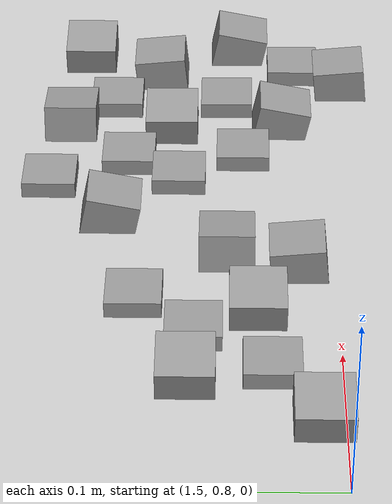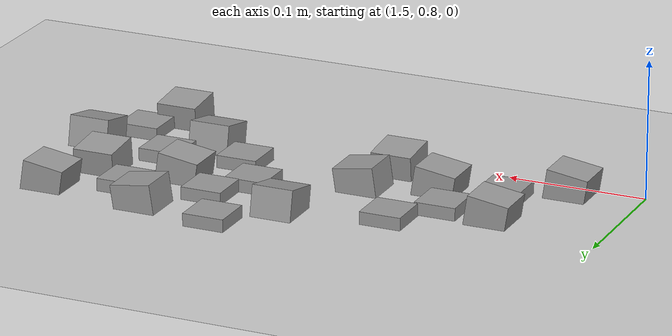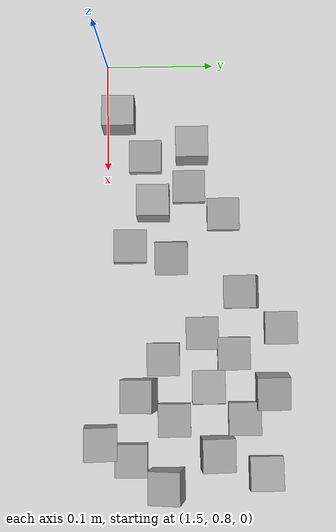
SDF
<sdf version="1.7">
 <world name="default">
  <model name="ground_plane">
   <static>1</static>
   <link name="link">
    <collision name="collision">
     <geometry><plane><normal>0 0 1</normal><size>100 100</size></plane></geometry>
     <surface><friction><ode><mu>100</mu><mu2>50</mu2></ode></friction></surface>
    </collision>
    <visual name="visual">
     <cast_shadows>0</cast_shadows>
     <geometry><plane><normal>0 0 1</normal><size>100 100</size></plane></geometry>
     <material>
      <script><uri>file://media/materials/scripts/gazebo.material</uri><name>Gazebo/Grey</name></script>
     </material>
    </visual>
   </link>
  </model>
  <model name="stone_road_0">
   <link name="link_0_clone_2_clone_2_clone_10">
    <inertial>
     <mass>1</mass>
     <inertia>
      <ixx>0.166667</ixx>
      <ixy>0</ixy>
      <ixz>0</ixz>
      <iyy>0.166667</iyy>
      <iyz>0</iyz>
      <izz>0.166667</izz>
     </inertia>
    </inertial>
    <pose>0.09869 0.163436 0.003778 0 -0.15 0</pose>
    <kinematic>1</kinematic>
    <visual name="visual">
     <geometry><box><size>0.03 0.03 0.03</size></box></geometry>
     <material>
      <lighting>1</lighting>
      <script><uri>file://media/materials/scripts/gazebo.material</uri><name>Gazebo/Grey</name></script>
      <shader type="pixel"><normal_map>__default__</normal_map></shader>
      <ambient>0.3 0.3 0.3 1</ambient>
      <diffuse>0.7 0.7 0.7 1</diffuse>
      <specular>0.01 0.01 0.01 1</specular>
      <emissive>0 0 0 1</emissive>
     </material>
    </visual>
    <collision name="collision">
     <geometry><box><size>0.03 0.03 0.03</size></box></geometry>
     <surface>
      <friction>
       <ode><mu>1</mu><mu2>1</mu2><fdir1>0 0 0</fdir1><slip1>0</slip1><slip2>0</slip2></ode>
       <torsional>
        <coefficient>1</coefficient>
        <patch_radius>0</patch_radius>
        <surface_radius>0</surface_radius>
        <use_patch_radius>1</use_patch_radius>
        <ode><slip>0</slip></ode>
       </torsional>
      </friction>
      <bounce><restitution_coefficient>0</restitution_coefficient><threshold>1e+06</threshold></bounce>
      <contact>
       <collide_without_contact>0</collide_without_contact>
       <collide_without_contact_bitmask>1</collide_without_contact_bitmask>
       <collide_bitmask>1</collide_bitmask>
       <ode>
        <soft_cfm>0</soft_cfm>
        <soft_erp>0.2</soft_erp>
        <kp>1e+13</kp>
        <kd>1</kd>
        <max_vel>0.01</max_vel>
        <min_depth>0</min_depth>
       </ode>
       <bullet>
        <split_impulse>1</split_impulse>
        <split_impulse_penetration_threshold>-0.01</split_impulse_penetration_threshold>
        <soft_cfm>0</soft_cfm>
        <soft_erp>0.2</soft_erp>
        <kp>1e+13</kp>
        <kd>1</kd>
       </bullet>
      </contact>
     </surface>
    </collision>
   </link>
   <link name="link_0_clone_2_clone_2_clone_12">
    <inertial>
     <mass>1</mass>
     <inertia>
      <ixx>0.166667</ixx>
      <ixy>0</ixy>
      <ixz>0</ixz>
      <iyy>0.166667</iyy>
      <iyz>0</iyz>
      <izz>0.166667</izz>
     </inertia>
    </inertial>
    <pose>0.044693 0.200081 0.003778 0 -0.15 0</pose>
    <kinematic>1</kinematic>
    <visual name="visual">
     <geometry><box><size>0.03 0.03 0.03</size></box></geometry>
     <material>
      <lighting>1</lighting>
      <script><uri>file://media/materials/scripts/gazebo.material</uri><name>Gazebo/Grey</name></script>
      <shader type="pixel"><normal_map>__default__</normal_map></shader>
      <ambient>0.3 0.3 0.3 1</ambient>
      <diffuse>0.7 0.7 0.7 1</diffuse>
      <specular>0.01 0.01 0.01 1</specular>
      <emissive>0 0 0 1</emissive>
     </material>
    </visual>
    <collision name="collision">
     <geometry><box><size>0.03 0.03 0.03</size></box></geometry>
     <surface>
      <friction>
       <ode><mu>1</mu><mu2>1</mu2><fdir1>0 0 0</fdir1><slip1>0</slip1><slip2>0</slip2></ode>
       <torsional>
        <coefficient>1</coefficient>
        <patch_radius>0</patch_radius>
        <surface_radius>0</surface_radius>
        <use_patch_radius>1</use_patch_radius>
        <ode><slip>0</slip></ode>
       </torsional>
      </friction>
      <bounce><restitution_coefficient>0</restitution_coefficient><threshold>1e+06</threshold></bounce>
      <contact>
       <collide_without_contact>0</collide_without_contact>
       <collide_without_contact_bitmask>1</collide_without_contact_bitmask>
       <collide_bitmask>1</collide_bitmask>
       <ode>
        <soft_cfm>0</soft_cfm>
        <soft_erp>0.2</soft_erp>
        <kp>1e+13</kp>
        <kd>1</kd>
        <max_vel>0.01</max_vel>
        <min_depth>0</min_depth>
       </ode>
       <bullet>
        <split_impulse>1</split_impulse>
        <split_impulse_penetration_threshold>-0.01</split_impulse_penetration_threshold>
        <soft_cfm>0</soft_cfm>
        <soft_erp>0.2</soft_erp>
        <kp>1e+13</kp>
        <kd>1</kd>
       </bullet>
      </contact>
     </surface>
    </collision>
   </link>
   <link name="link_0_clone_2_clone_2_clone_13">
    <inertial>
     <mass>1</mass>
     <inertia>
      <ixx>0.166667</ixx>
      <ixy>0</ixy>
      <ixz>0</ixz>
      <iyy>0.166667</iyy>
      <iyz>0</iyz>
      <izz>0.166667</izz>
     </inertia>
    </inertial>
    <pose>0.014407 0.13189 0.003778 0 -0.15 0</pose>
    <kinematic>1</kinematic>
    <visual name="visual">
     <geometry><box><size>0.03 0.03 0.03</size></box></geometry>
     <material>
      <lighting>1</lighting>
      <script><uri>file://media/materials/scripts/gazebo.material</uri><name>Gazebo/Grey</name></script>
      <shader type="pixel"><normal_map>__default__</normal_map></shader>
      <ambient>0.3 0.3 0.3 1</ambient>
      <diffuse>0.7 0.7 0.7 1</diffuse>
      <specular>0.01 0.01 0.01 1</specular>
      <emissive>0 0 0 1</emissive>
     </material>
    </visual>
    <collision name="collision">
     <geometry><box><size>0.03 0.03 0.03</size></box></geometry>
     <surface>
      <friction>
       <ode><mu>1</mu><mu2>1</mu2><fdir1>0 0 0</fdir1><slip1>0</slip1><slip2>0</slip2></ode>
       <torsional>
        <coefficient>1</coefficient>
        <patch_radius>0</patch_radius>
        <surface_radius>0</surface_radius>
        <use_patch_radius>1</use_patch_radius>
        <ode><slip>0</slip></ode>
       </torsional>
      </friction>
      <bounce><restitution_coefficient>0</restitution_coefficient><threshold>1e+06</threshold></bounce>
      <contact>
       <collide_without_contact>0</collide_without_contact>
       <collide_without_contact_bitmask>1</collide_without_contact_bitmask>
       <collide_bitmask>1</collide_bitmask>
       <ode>
        <soft_cfm>0</soft_cfm>
        <soft_erp>0.2</soft_erp>
        <kp>1e+13</kp>
        <kd>1</kd>
        <max_vel>0.01</max_vel>
        <min_depth>0</min_depth>
       </ode>
       <bullet>
        <split_impulse>1</split_impulse>
        <split_impulse_penetration_threshold>-0.01</split_impulse_penetration_threshold>
        <soft_cfm>0</soft_cfm>
        <soft_erp>0.2</soft_erp>
        <kp>1e+13</kp>
        <kd>1</kd>
       </bullet>
      </contact>
     </surface>
    </collision>
   </link>
   <link name="link_0_clone_2_clone_2_clone_13_clone">
    <inertial>
     <mass>1</mass>
     <inertia>
      <ixx>0.166667</ixx>
      <ixy>0</ixy>
      <ixz>0</ixz>
      <iyy>0.166667</iyy>
      <iyz>0</iyz>
      <izz>0.166667</izz>
     </inertia>
    </inertial>
    <pose>0.138846 0.140956 0.003778 -0.1 0 0</pose>
    <kinematic>1</kinematic>
    <visual name="visual">
     <geometry><box><size>0.03 0.03 0.03</size></box></geometry>
     <material>
      <lighting>1</lighting>
      <script><uri>file://media/materials/scripts/gazebo.material</uri><name>Gazebo/Grey</name></script>
      <shader type="pixel"><normal_map>__default__</normal_map></shader>
      <ambient>0.3 0.3 0.3 1</ambient>
      <diffuse>0.7 0.7 0.7 1</diffuse>
      <specular>0.01 0.01 0.01 1</specular>
      <emissive>0 0 0 1</emissive>
     </material>
    </visual>
    <collision name="collision">
     <geometry><box><size>0.03 0.03 0.03</size></box></geometry>
     <surface>
      <friction>
       <ode><mu>1</mu><mu2>1</mu2><fdir1>0 0 0</fdir1><slip1>0</slip1><slip2>0</slip2></ode>
       <torsional>
        <coefficient>1</coefficient>
        <patch_radius>0</patch_radius>
        <surface_radius>0</surface_radius>
        <use_patch_radius>1</use_patch_radius>
        <ode><slip>0</slip></ode>
       </torsional>
      </friction>
      <bounce><restitution_coefficient>0</restitution_coefficient><threshold>1e+06</threshold></bounce>
      <contact>
       <collide_without_contact>0</collide_without_contact>
       <collide_without_contact_bitmask>1</collide_without_contact_bitmask>
       <collide_bitmask>1</collide_bitmask>
       <ode>
        <soft_cfm>0</soft_cfm>
        <soft_erp>0.2</soft_erp>
        <kp>1e+13</kp>
        <kd>1</kd>
        <max_vel>0.01</max_vel>
        <min_depth>0</min_depth>
       </ode>
       <bullet>
        <split_impulse>1</split_impulse>
        <split_impulse_penetration_threshold>-0.01</split_impulse_penetration_threshold>
        <soft_cfm>0</soft_cfm>
        <soft_erp>0.2</soft_erp>
        <kp>1e+13</kp>
        <kd>1</kd>
       </bullet>
      </contact>
     </surface>
    </collision>
   </link>
   <link name="link_0_clone_2_clone_2_clone_13_clone_clone_16">
    <inertial>
     <mass>1</mass>
     <inertia>
      <ixx>0.166667</ixx>
      <ixy>0</ixy>
      <ixz>0</ixz>
      <iyy>0.166667</iyy>
      <iyz>0</iyz>
      <izz>0.166667</izz>
     </inertia>
    </inertial>
    <pose>0.108948 0.22849 -0.006222 0 -0 0</pose>
    <kinematic>1</kinematic>
    <visual name="visual">
     <geometry><box><size>0.03 0.03 0.03</size></box></geometry>
     <material>
      <lighting>1</lighting>
      <script><uri>file://media/materials/scripts/gazebo.material</uri><name>Gazebo/Grey</name></script>
      <shader type="pixel"><normal_map>__default__</normal_map></shader>
      <ambient>0.3 0.3 0.3 1</ambient>
      <diffuse>0.7 0.7 0.7 1</diffuse>
      <specular>0.01 0.01 0.01 1</specular>
      <emissive>0 0 0 1</emissive>
     </material>
    </visual>
    <collision name="collision">
     <geometry><box><size>0.03 0.03 0.03</size></box></geometry>
     <surface>
      <friction>
       <ode><mu>1</mu><mu2>1</mu2><fdir1>0 0 0</fdir1><slip1>0</slip1><slip2>0</slip2></ode>
       <torsional>
        <coefficient>1</coefficient>
        <patch_radius>0</patch_radius>
        <surface_radius>0</surface_radius>
        <use_patch_radius>1</use_patch_radius>
        <ode><slip>0</slip></ode>
       </torsional>
      </friction>
      <bounce><restitution_coefficient>0</restitution_coefficient><threshold>1e+06</threshold></bounce>
      <contact>
       <collide_without_contact>0</collide_without_contact>
       <collide_without_contact_bitmask>1</collide_without_contact_bitmask>
       <collide_bitmask>1</collide_bitmask>
       <ode>
        <soft_cfm>0</soft_cfm>
        <soft_erp>0.2</soft_erp>
        <kp>1e+13</kp>
        <kd>1</kd>
        <max_vel>0.01</max_vel>
        <min_depth>0</min_depth>
       </ode>
       <bullet>
        <split_impulse>1</split_impulse>
        <split_impulse_penetration_threshold>-0.01</split_impulse_penetration_threshold>
        <soft_cfm>0</soft_cfm>
        <soft_erp>0.2</soft_erp>
        <kp>1e+13</kp>
        <kd>1</kd>
       </bullet>
      </contact>
     </surface>
    </collision>
   </link>
   <link name="link_0_clone_2_clone_2_clone_13_clone_clone_16_clone">
    <inertial>
     <mass>1</mass>
     <inertia>
      <ixx>0.166667</ixx>
      <ixy>0</ixy>
      <ixz>0</ixz>
      <iyy>0.166667</iyy>
      <iyz>0</iyz>
      <izz>0.166667</izz>
     </inertia>
    </inertial>
    <pose>0.0535 0.156403 -0.006222 0 -0 0</pose>
    <kinematic>1</kinematic>
    <visual name="visual">
     <geometry><box><size>0.03 0.03 0.03</size></box></geometry>
     <material>
      <lighting>1</lighting>
      <script><uri>file://media/materials/scripts/gazebo.material</uri><name>Gazebo/Grey</name></script>
      <shader type="pixel"><normal_map>__default__</normal_map></shader>
      <ambient>0.3 0.3 0.3 1</ambient>
      <diffuse>0.7 0.7 0.7 1</diffuse>
      <specular>0.01 0.01 0.01 1</specular>
      <emissive>0 0 0 1</emissive>
     </material>
    </visual>
    <collision name="collision">
     <geometry><box><size>0.03 0.03 0.03</size></box></geometry>
     <surface>
      <friction>
       <ode><mu>1</mu><mu2>1</mu2><fdir1>0 0 0</fdir1><slip1>0</slip1><slip2>0</slip2></ode>
       <torsional>
        <coefficient>1</coefficient>
        <patch_radius>0</patch_radius>
        <surface_radius>0</surface_radius>
        <use_patch_radius>1</use_patch_radius>
        <ode><slip>0</slip></ode>
       </torsional>
      </friction>
      <bounce><restitution_coefficient>0</restitution_coefficient><threshold>1e+06</threshold></bounce>
      <contact>
       <collide_without_contact>0</collide_without_contact>
       <collide_without_contact_bitmask>1</collide_without_contact_bitmask>
       <collide_bitmask>1</collide_bitmask>
       <ode>
        <soft_cfm>0</soft_cfm>
        <soft_erp>0.2</soft_erp>
        <kp>1e+13</kp>
        <kd>1</kd>
        <max_vel>0.01</max_vel>
        <min_depth>0</min_depth>
       </ode>
       <bullet>
        <split_impulse>1</split_impulse>
        <split_impulse_penetration_threshold>-0.01</split_impulse_penetration_threshold>
        <soft_cfm>0</soft_cfm>
        <soft_erp>0.2</soft_erp>
        <kp>1e+13</kp>
        <kd>1</kd>
       </bullet>
      </contact>
     </surface>
    </collision>
   </link>
   <link name="link_0_clone_2_clone_2_clone_13_clone_clone_16_clone_24">
    <inertial>
     <mass>1</mass>
     <inertia>
      <ixx>0.166667</ixx>
      <ixy>0</ixy>
      <ixz>0</ixz>
      <iyy>0.166667</iyy>
      <iyz>0</iyz>
      <izz>0.166667</izz>
     </inertia>
    </inertial>
    <pose>0.08246 0.196776 -0.006222 0 -0 0</pose>
    <kinematic>1</kinematic>
    <visual name="visual">
     <geometry><box><size>0.03 0.03 0.03</size></box></geometry>
     <material>
      <lighting>1</lighting>
      <script><uri>file://media/materials/scripts/gazebo.material</uri><name>Gazebo/Grey</name></script>
      <shader type="pixel"><normal_map>__default__</normal_map></shader>
      <ambient>0.3 0.3 0.3 1</ambient>
      <diffuse>0.7 0.7 0.7 1</diffuse>
      <specular>0.01 0.01 0.01 1</specular>
      <emissive>0 0 0 1</emissive>
     </material>
    </visual>
    <collision name="collision">
     <geometry><box><size>0.03 0.03 0.03</size></box></geometry>
     <surface>
      <friction>
       <ode><mu>1</mu><mu2>1</mu2><fdir1>0 0 0</fdir1><slip1>0</slip1><slip2>0</slip2></ode>
       <torsional>
        <coefficient>1</coefficient>
        <patch_radius>0</patch_radius>
        <surface_radius>0</surface_radius>
        <use_patch_radius>1</use_patch_radius>
        <ode><slip>0</slip></ode>
       </torsional>
      </friction>
      <bounce><restitution_coefficient>0</restitution_coefficient><threshold>1e+06</threshold></bounce>
      <contact>
       <collide_without_contact>0</collide_without_contact>
       <collide_without_contact_bitmask>1</collide_without_contact_bitmask>
       <collide_bitmask>1</collide_bitmask>
       <ode>
        <soft_cfm>0</soft_cfm>
        <soft_erp>0.2</soft_erp>
        <kp>1e+13</kp>
        <kd>1</kd>
        <max_vel>0.01</max_vel>
        <min_depth>0</min_depth>
       </ode>
       <bullet>
        <split_impulse>1</split_impulse>
        <split_impulse_penetration_threshold>-0.01</split_impulse_penetration_threshold>
        <soft_cfm>0</soft_cfm>
        <soft_erp>0.2</soft_erp>
        <kp>1e+13</kp>
        <kd>1</kd>
       </bullet>
      </contact>
     </surface>
    </collision>
   </link>
   <link name="link_0_clone_2_clone_9">
    <inertial>
     <mass>1</mass>
     <inertia>
      <ixx>0.166667</ixx>
      <ixy>0</ixy>
      <ixz>0</ixz>
      <iyy>0.166667</iyy>
      <iyz>0</iyz>
      <izz>0.166667</izz>
     </inertia>
    </inertial>
    <pose>0.148876 0.179752 0.003778 0 0.15 0</pose>
    <kinematic>1</kinematic>
    <visual name="visual">
     <geometry><box><size>0.03 0.03 0.03</size></box></geometry>
     <material>
      <lighting>1</lighting>
      <script><uri>file://media/materials/scripts/gazebo.material</uri><name>Gazebo/Grey</name></script>
      <shader type="pixel"><normal_map>__default__</normal_map></shader>
      <ambient>0.3 0.3 0.3 1</ambient>
      <diffuse>0.7 0.7 0.7 1</diffuse>
      <specular>0.01 0.01 0.01 1</specular>
      <emissive>0 0 0 1</emissive>
     </material>
    </visual>
    <collision name="collision">
     <geometry><box><size>0.03 0.03 0.03</size></box></geometry>
     <surface>
      <friction>
       <ode><mu>1</mu><mu2>1</mu2><fdir1>0 0 0</fdir1><slip1>0</slip1><slip2>0</slip2></ode>
       <torsional>
        <coefficient>1</coefficient>
        <patch_radius>0</patch_radius>
        <surface_radius>0</surface_radius>
        <use_patch_radius>1</use_patch_radius>
        <ode><slip>0</slip></ode>
       </torsional>
      </friction>
      <bounce><restitution_coefficient>0</restitution_coefficient><threshold>1e+06</threshold></bounce>
      <contact>
       <collide_without_contact>0</collide_without_contact>
       <collide_without_contact_bitmask>1</collide_without_contact_bitmask>
       <collide_bitmask>1</collide_bitmask>
       <ode>
        <soft_cfm>0</soft_cfm>
        <soft_erp>0.2</soft_erp>
        <kp>1e+13</kp>
        <kd>1</kd>
        <max_vel>0.01</max_vel>
        <min_depth>0</min_depth>
       </ode>
       <bullet>
        <split_impulse>1</split_impulse>
        <split_impulse_penetration_threshold>-0.01</split_impulse_penetration_threshold>
        <soft_cfm>0</soft_cfm>
        <soft_erp>0.2</soft_erp>
        <kp>1e+13</kp>
        <kd>1</kd>
       </bullet>
      </contact>
     </surface>
    </collision>
   </link>
   <static>0</static>
   <pose>1.53544 0.679184 -0 0 -0 0</pose>
  </model>
  <model name="stone_road_5">
   <link name="link_0_clone_0">
    <inertial>
     <mass>1</mass>
     <inertia>
      <ixx>0.166667</ixx>
      <ixy>0</ixy>
      <ixz>0</ixz>
      <iyy>0.166667</iyy>
      <iyz>0</iyz>
      <izz>0.166667</izz>
     </inertia>
    </inertial>
    <pose>-0.104982 -0.15412 0.003778 0.2 -0 0</pose>
    <kinematic>1</kinematic>
    <visual name="visual">
     <geometry><box><size>0.03 0.03 0.03</size></box></geometry>
     <material>
      <lighting>1</lighting>
      <script><uri>file://media/materials/scripts/gazebo.material</uri><name>Gazebo/Grey</name></script>
      <shader type="pixel"><normal_map>__default__</normal_map></shader>
      <ambient>0.3 0.3 0.3 1</ambient>
      <diffuse>0.7 0.7 0.7 1</diffuse>
      <specular>0.01 0.01 0.01 1</specular>
      <emissive>0 0 0 1</emissive>
     </material>
    </visual>
    <collision name="collision">
     <geometry><box><size>0.03 0.03 0.03</size></box></geometry>
     <surface>
      <friction>
       <ode><mu>1</mu><mu2>1</mu2><fdir1>0 0 0</fdir1><slip1>0</slip1><slip2>0</slip2></ode>
       <torsional>
        <coefficient>1</coefficient>
        <patch_radius>0</patch_radius>
        <surface_radius>0</surface_radius>
        <use_patch_radius>1</use_patch_radius>
        <ode><slip>0</slip></ode>
       </torsional>
      </friction>
      <bounce><restitution_coefficient>0</restitution_coefficient><threshold>1e+06</threshold></bounce>
      <contact>
       <collide_without_contact>0</collide_without_contact>
       <collide_without_contact_bitmask>1</collide_without_contact_bitmask>
       <collide_bitmask>1</collide_bitmask>
       <ode>
        <soft_cfm>0</soft_cfm>
        <soft_erp>0.2</soft_erp>
        <kp>1e+13</kp>
        <kd>1</kd>
        <max_vel>0.01</max_vel>
        <min_depth>0</min_depth>
       </ode>
       <bullet>
        <split_impulse>1</split_impulse>
        <split_impulse_penetration_threshold>-0.01</split_impulse_penetration_threshold>
        <soft_cfm>0</soft_cfm>
        <soft_erp>0.2</soft_erp>
        <kp>1e+13</kp>
        <kd>1</kd>
       </bullet>
      </contact>
     </surface>
    </collision>
   </link>
   <link name="link_0_clone_1">
    <inertial>
     <mass>1</mass>
     <inertia>
      <ixx>0.166667</ixx>
      <ixy>0</ixy>
      <ixz>0</ixz>
      <iyy>0.166667</iyy>
      <iyz>0</iyz>
      <izz>0.166667</izz>
     </inertia>
    </inertial>
    <pose>-0.022921 -0.129606 0.003778 0.2 -0 0</pose>
    <kinematic>1</kinematic>
    <visual name="visual">
     <geometry><box><size>0.03 0.03 0.03</size></box></geometry>
     <material>
      <lighting>1</lighting>
      <script><uri>file://media/materials/scripts/gazebo.material</uri><name>Gazebo/Grey</name></script>
      <shader type="pixel"><normal_map>__default__</normal_map></shader>
      <ambient>0.3 0.3 0.3 1</ambient>
      <diffuse>0.7 0.7 0.7 1</diffuse>
      <specular>0.01 0.01 0.01 1</specular>
      <emissive>0 0 0 1</emissive>
     </material>
    </visual>
    <collision name="collision">
     <geometry><box><size>0.03 0.03 0.03</size></box></geometry>
     <surface>
      <friction>
       <ode><mu>1</mu><mu2>1</mu2><fdir1>0 0 0</fdir1><slip1>0</slip1><slip2>0</slip2></ode>
       <torsional>
        <coefficient>1</coefficient>
        <patch_radius>0</patch_radius>
        <surface_radius>0</surface_radius>
        <use_patch_radius>1</use_patch_radius>
        <ode><slip>0</slip></ode>
       </torsional>
      </friction>
      <bounce><restitution_coefficient>0</restitution_coefficient><threshold>1e+06</threshold></bounce>
      <contact>
       <collide_without_contact>0</collide_without_contact>
       <collide_without_contact_bitmask>1</collide_without_contact_bitmask>
       <collide_bitmask>1</collide_bitmask>
       <ode>
        <soft_cfm>0</soft_cfm>
        <soft_erp>0.2</soft_erp>
        <kp>1e+13</kp>
        <kd>1</kd>
        <max_vel>0.01</max_vel>
        <min_depth>0</min_depth>
       </ode>
       <bullet>
        <split_impulse>1</split_impulse>
        <split_impulse_penetration_threshold>-0.01</split_impulse_penetration_threshold>
        <soft_cfm>0</soft_cfm>
        <soft_erp>0.2</soft_erp>
        <kp>1e+13</kp>
        <kd>1</kd>
       </bullet>
      </contact>
     </surface>
    </collision>
   </link>
   <link name="link_0_clone_2_clone">
    <inertial>
     <mass>1</mass>
     <inertia>
      <ixx>0.166667</ixx>
      <ixy>0</ixy>
      <ixz>0</ixz>
      <iyy>0.166667</iyy>
      <iyz>0</iyz>
      <izz>0.166667</izz>
     </inertia>
    </inertial>
    <pose>-0.10771 -0.03187 0.003778 0 0.15 0</pose>
    <kinematic>1</kinematic>
    <visual name="visual">
     <geometry><box><size>0.03 0.03 0.03</size></box></geometry>
     <material>
      <lighting>1</lighting>
      <script><uri>file://media/materials/scripts/gazebo.material</uri><name>Gazebo/Grey</name></script>
      <shader type="pixel"><normal_map>__default__</normal_map></shader>
      <ambient>0.3 0.3 0.3 1</ambient>
      <diffuse>0.7 0.7 0.7 1</diffuse>
      <specular>0.01 0.01 0.01 1</specular>
      <emissive>0 0 0 1</emissive>
     </material>
    </visual>
    <collision name="collision">
     <geometry><box><size>0.03 0.03 0.03</size></box></geometry>
     <surface>
      <friction>
       <ode><mu>1</mu><mu2>1</mu2><fdir1>0 0 0</fdir1><slip1>0</slip1><slip2>0</slip2></ode>
       <torsional>
        <coefficient>1</coefficient>
        <patch_radius>0</patch_radius>
        <surface_radius>0</surface_radius>
        <use_patch_radius>1</use_patch_radius>
        <ode><slip>0</slip></ode>
       </torsional>
      </friction>
      <bounce><restitution_coefficient>0</restitution_coefficient><threshold>1e+06</threshold></bounce>
      <contact>
       <collide_without_contact>0</collide_without_contact>
       <collide_without_contact_bitmask>1</collide_without_contact_bitmask>
       <collide_bitmask>1</collide_bitmask>
       <ode>
        <soft_cfm>0</soft_cfm>
        <soft_erp>0.2</soft_erp>
        <kp>1e+13</kp>
        <kd>1</kd>
        <max_vel>0.01</max_vel>
        <min_depth>0</min_depth>
       </ode>
       <bullet>
        <split_impulse>1</split_impulse>
        <split_impulse_penetration_threshold>-0.01</split_impulse_penetration_threshold>
        <soft_cfm>0</soft_cfm>
        <soft_erp>0.2</soft_erp>
        <kp>1e+13</kp>
        <kd>1</kd>
       </bullet>
      </contact>
     </surface>
    </collision>
   </link>
   <link name="link_0_clone_2_clone_2_clone_0">
    <inertial>
     <mass>1</mass>
     <inertia>
      <ixx>0.166667</ixx>
      <ixy>0</ixy>
      <ixz>0</ixz>
      <iyy>0.166667</iyy>
      <iyz>0</iyz>
      <izz>0.166667</izz>
     </inertia>
    </inertial>
    <pose>-0.032874 -0.039714 0.003778 0 -0.15 0</pose>
    <kinematic>1</kinematic>
    <visual name="visual">
     <geometry><box><size>0.03 0.03 0.03</size></box></geometry>
     <material>
      <lighting>1</lighting>
      <script><uri>file://media/materials/scripts/gazebo.material</uri><name>Gazebo/Grey</name></script>
      <shader type="pixel"><normal_map>__default__</normal_map></shader>
      <ambient>0.3 0.3 0.3 1</ambient>
      <diffuse>0.7 0.7 0.7 1</diffuse>
      <specular>0.01 0.01 0.01 1</specular>
      <emissive>0 0 0 1</emissive>
     </material>
    </visual>
    <collision name="collision">
     <geometry><box><size>0.03 0.03 0.03</size></box></geometry>
     <surface>
      <friction>
       <ode><mu>1</mu><mu2>1</mu2><fdir1>0 0 0</fdir1><slip1>0</slip1><slip2>0</slip2></ode>
       <torsional>
        <coefficient>1</coefficient>
        <patch_radius>0</patch_radius>
        <surface_radius>0</surface_radius>
        <use_patch_radius>1</use_patch_radius>
        <ode><slip>0</slip></ode>
       </torsional>
      </friction>
      <bounce><restitution_coefficient>0</restitution_coefficient><threshold>1e+06</threshold></bounce>
      <contact>
       <collide_without_contact>0</collide_without_contact>
       <collide_without_contact_bitmask>1</collide_without_contact_bitmask>
       <collide_bitmask>1</collide_bitmask>
       <ode>
        <soft_cfm>0</soft_cfm>
        <soft_erp>0.2</soft_erp>
        <kp>1e+13</kp>
        <kd>1</kd>
        <max_vel>0.01</max_vel>
        <min_depth>0</min_depth>
       </ode>
       <bullet>
        <split_impulse>1</split_impulse>
        <split_impulse_penetration_threshold>-0.01</split_impulse_penetration_threshold>
        <soft_cfm>0</soft_cfm>
        <soft_erp>0.2</soft_erp>
        <kp>1e+13</kp>
        <kd>1</kd>
       </bullet>
      </contact>
     </surface>
    </collision>
   </link>
   <link name="link_0_clone_2_clone_2_clone_13_clone_clone_16_clone_10">
    <inertial>
     <mass>1</mass>
     <inertia>
      <ixx>0.166667</ixx>
      <ixy>0</ixy>
      <ixz>0</ixz>
      <iyy>0.166667</iyy>
      <iyz>0</iyz>
      <izz>0.166667</izz>
     </inertia>
    </inertial>
    <pose>-0.082186 -0.05781 -0.006222 0 -0 0</pose>
    <kinematic>1</kinematic>
    <visual name="visual">
     <geometry><box><size>0.03 0.03 0.03</size></box></geometry>
     <material>
      <lighting>1</lighting>
      <script><uri>file://media/materials/scripts/gazebo.material</uri><name>Gazebo/Grey</name></script>
      <shader type="pixel"><normal_map>__default__</normal_map></shader>
      <ambient>0.3 0.3 0.3 1</ambient>
      <diffuse>0.7 0.7 0.7 1</diffuse>
      <specular>0.01 0.01 0.01 1</specular>
      <emissive>0 0 0 1</emissive>
     </material>
    </visual>
    <collision name="collision">
     <geometry><box><size>0.03 0.03 0.03</size></box></geometry>
     <surface>
      <friction>
       <ode><mu>1</mu><mu2>1</mu2><fdir1>0 0 0</fdir1><slip1>0</slip1><slip2>0</slip2></ode>
       <torsional>
        <coefficient>1</coefficient>
        <patch_radius>0</patch_radius>
        <surface_radius>0</surface_radius>
        <use_patch_radius>1</use_patch_radius>
        <ode><slip>0</slip></ode>
       </torsional>
      </friction>
      <bounce><restitution_coefficient>0</restitution_coefficient><threshold>1e+06</threshold></bounce>
      <contact>
       <collide_without_contact>0</collide_without_contact>
       <collide_without_contact_bitmask>1</collide_without_contact_bitmask>
       <collide_bitmask>1</collide_bitmask>
       <ode>
        <soft_cfm>0</soft_cfm>
        <soft_erp>0.2</soft_erp>
        <kp>1e+13</kp>
        <kd>1</kd>
        <max_vel>0.01</max_vel>
        <min_depth>0</min_depth>
       </ode>
       <bullet>
        <split_impulse>1</split_impulse>
        <split_impulse_penetration_threshold>-0.01</split_impulse_penetration_threshold>
        <soft_cfm>0</soft_cfm>
        <soft_erp>0.2</soft_erp>
        <kp>1e+13</kp>
        <kd>1</kd>
       </bullet>
      </contact>
     </surface>
    </collision>
   </link>
   <link name="link_0_clone_2_clone_2_clone_13_clone_clone_16_clone_11">
    <inertial>
     <mass>1</mass>
     <inertia>
      <ixx>0.166667</ixx>
      <ixy>0</ixy>
      <ixz>0</ixz>
      <iyy>0.166667</iyy>
      <iyz>0</iyz>
      <izz>0.166667</izz>
     </inertia>
    </inertial>
    <pose>-0.141844 -0.066911 -0.006222 0 -0 0</pose>
    <kinematic>1</kinematic>
    <visual name="visual">
     <geometry><box><size>0.03 0.03 0.03</size></box></geometry>
     <material>
      <lighting>1</lighting>
      <script><uri>file://media/materials/scripts/gazebo.material</uri><name>Gazebo/Grey</name></script>
      <shader type="pixel"><normal_map>__default__</normal_map></shader>
      <ambient>0.3 0.3 0.3 1</ambient>
      <diffuse>0.7 0.7 0.7 1</diffuse>
      <specular>0.01 0.01 0.01 1</specular>
      <emissive>0 0 0 1</emissive>
     </material>
    </visual>
    <collision name="collision">
     <geometry><box><size>0.03 0.03 0.03</size></box></geometry>
     <surface>
      <friction>
       <ode><mu>1</mu><mu2>1</mu2><fdir1>0 0 0</fdir1><slip1>0</slip1><slip2>0</slip2></ode>
       <torsional>
        <coefficient>1</coefficient>
        <patch_radius>0</patch_radius>
        <surface_radius>0</surface_radius>
        <use_patch_radius>1</use_patch_radius>
        <ode><slip>0</slip></ode>
       </torsional>
      </friction>
      <bounce><restitution_coefficient>0</restitution_coefficient><threshold>1e+06</threshold></bounce>
      <contact>
       <collide_without_contact>0</collide_without_contact>
       <collide_without_contact_bitmask>1</collide_without_contact_bitmask>
       <collide_bitmask>1</collide_bitmask>
       <ode>
        <soft_cfm>0</soft_cfm>
        <soft_erp>0.2</soft_erp>
        <kp>1e+13</kp>
        <kd>1</kd>
        <max_vel>0.01</max_vel>
        <min_depth>0</min_depth>
       </ode>
       <bullet>
        <split_impulse>1</split_impulse>
        <split_impulse_penetration_threshold>-0.01</split_impulse_penetration_threshold>
        <soft_cfm>0</soft_cfm>
        <soft_erp>0.2</soft_erp>
        <kp>1e+13</kp>
        <kd>1</kd>
       </bullet>
      </contact>
     </surface>
    </collision>
   </link>
   <link name="link_0_clone_2_clone_2_clone_13_clone_clone_16_clone_12">
    <inertial>
     <mass>1</mass>
     <inertia>
      <ixx>0.166667</ixx>
      <ixy>0</ixy>
      <ixz>0</ixz>
      <iyy>0.166667</iyy>
      <iyz>0</iyz>
      <izz>0.166667</izz>
     </inertia>
    </inertial>
    <pose>-0.164908 -0.022947 -0.006222 0 -0 0</pose>
    <kinematic>1</kinematic>
    <visual name="visual">
     <geometry><box><size>0.03 0.03 0.03</size></box></geometry>
     <material>
      <lighting>1</lighting>
      <script><uri>file://media/materials/scripts/gazebo.material</uri><name>Gazebo/Grey</name></script>
      <shader type="pixel"><normal_map>__default__</normal_map></shader>
      <ambient>0.3 0.3 0.3 1</ambient>
      <diffuse>0.7 0.7 0.7 1</diffuse>
      <specular>0.01 0.01 0.01 1</specular>
      <emissive>0 0 0 1</emissive>
     </material>
    </visual>
    <collision name="collision">
     <geometry><box><size>0.03 0.03 0.03</size></box></geometry>
     <surface>
      <friction>
       <ode><mu>1</mu><mu2>1</mu2><fdir1>0 0 0</fdir1><slip1>0</slip1><slip2>0</slip2></ode>
       <torsional>
        <coefficient>1</coefficient>
        <patch_radius>0</patch_radius>
        <surface_radius>0</surface_radius>
        <use_patch_radius>1</use_patch_radius>
        <ode><slip>0</slip></ode>
       </torsional>
      </friction>
      <bounce><restitution_coefficient>0</restitution_coefficient><threshold>1e+06</threshold></bounce>
      <contact>
       <collide_without_contact>0</collide_without_contact>
       <collide_without_contact_bitmask>1</collide_without_contact_bitmask>
       <collide_bitmask>1</collide_bitmask>
       <ode>
        <soft_cfm>0</soft_cfm>
        <soft_erp>0.2</soft_erp>
        <kp>1e+13</kp>
        <kd>1</kd>
        <max_vel>0.01</max_vel>
        <min_depth>0</min_depth>
       </ode>
       <bullet>
        <split_impulse>1</split_impulse>
        <split_impulse_penetration_threshold>-0.01</split_impulse_penetration_threshold>
        <soft_cfm>0</soft_cfm>
        <soft_erp>0.2</soft_erp>
        <kp>1e+13</kp>
        <kd>1</kd>
       </bullet>
      </contact>
     </surface>
    </collision>
   </link>
   <link name="link_0_clone_2_clone_2_clone_13_clone_clone_16_clone_27">
    <inertial>
     <mass>1</mass>
     <inertia>
      <ixx>0.166667</ixx>
      <ixy>0</ixy>
      <ixz>0</ixz>
      <iyy>0.166667</iyy>
      <iyz>0</iyz>
      <izz>0.166667</izz>
     </inertia>
    </inertial>
    <pose>-0.137316 -0.132225 -0.006222 0 -0 0</pose>
    <kinematic>1</kinematic>
    <visual name="visual">
     <geometry><box><size>0.03 0.03 0.03</size></box></geometry>
     <material>
      <lighting>1</lighting>
      <script><uri>file://media/materials/scripts/gazebo.material</uri><name>Gazebo/Grey</name></script>
      <shader type="pixel"><normal_map>__default__</normal_map></shader>
      <ambient>0.3 0.3 0.3 1</ambient>
      <diffuse>0.7 0.7 0.7 1</diffuse>
      <specular>0.01 0.01 0.01 1</specular>
      <emissive>0 0 0 1</emissive>
     </material>
    </visual>
    <collision name="collision">
     <geometry><box><size>0.03 0.03 0.03</size></box></geometry>
     <surface>
      <friction>
       <ode><mu>1</mu><mu2>1</mu2><fdir1>0 0 0</fdir1><slip1>0</slip1><slip2>0</slip2></ode>
       <torsional>
        <coefficient>1</coefficient>
        <patch_radius>0</patch_radius>
        <surface_radius>0</surface_radius>
        <use_patch_radius>1</use_patch_radius>
        <ode><slip>0</slip></ode>
       </torsional>
      </friction>
      <bounce><restitution_coefficient>0</restitution_coefficient><threshold>1e+06</threshold></bounce>
      <contact>
       <collide_without_contact>0</collide_without_contact>
       <collide_without_contact_bitmask>1</collide_without_contact_bitmask>
       <collide_bitmask>1</collide_bitmask>
       <ode>
        <soft_cfm>0</soft_cfm>
        <soft_erp>0.2</soft_erp>
        <kp>1e+13</kp>
        <kd>1</kd>
        <max_vel>0.01</max_vel>
        <min_depth>0</min_depth>
       </ode>
       <bullet>
        <split_impulse>1</split_impulse>
        <split_impulse_penetration_threshold>-0.01</split_impulse_penetration_threshold>
        <soft_cfm>0</soft_cfm>
        <soft_erp>0.2</soft_erp>
        <kp>1e+13</kp>
        <kd>1</kd>
       </bullet>
      </contact>
     </surface>
    </collision>
   </link>
   <link name="link_0_clone_2_clone_2_clone_13_clone_clone_16_clone_30">
    <inertial>
     <mass>1</mass>
     <inertia>
      <ixx>0.166667</ixx>
      <ixy>0</ixy>
      <ixz>0</ixz>
      <iyy>0.166667</iyy>
      <iyz>0</iyz>
      <izz>0.166667</izz>
     </inertia>
    </inertial>
    <pose>-0.160879 -0.095951 -0.006222 0 -0 0</pose>
    <kinematic>1</kinematic>
    <visual name="visual">
     <geometry><box><size>0.03 0.03 0.03</size></box></geometry>
     <material>
      <lighting>1</lighting>
      <script><uri>file://media/materials/scripts/gazebo.material</uri><name>Gazebo/Grey</name></script>
      <shader type="pixel"><normal_map>__default__</normal_map></shader>
      <ambient>0.3 0.3 0.3 1</ambient>
      <diffuse>0.7 0.7 0.7 1</diffuse>
      <specular>0.01 0.01 0.01 1</specular>
      <emissive>0 0 0 1</emissive>
     </material>
    </visual>
    <collision name="collision">
     <geometry><box><size>0.03 0.03 0.03</size></box></geometry>
     <surface>
      <friction>
       <ode><mu>1</mu><mu2>1</mu2><fdir1>0 0 0</fdir1><slip1>0</slip1><slip2>0</slip2></ode>
       <torsional>
        <coefficient>1</coefficient>
        <patch_radius>0</patch_radius>
        <surface_radius>0</surface_radius>
        <use_patch_radius>1</use_patch_radius>
        <ode><slip>0</slip></ode>
       </torsional>
      </friction>
      <bounce><restitution_coefficient>0</restitution_coefficient><threshold>1e+06</threshold></bounce>
      <contact>
       <collide_without_contact>0</collide_without_contact>
       <collide_without_contact_bitmask>1</collide_without_contact_bitmask>
       <collide_bitmask>1</collide_bitmask>
       <ode>
        <soft_cfm>0</soft_cfm>
        <soft_erp>0.2</soft_erp>
        <kp>1e+13</kp>
        <kd>1</kd>
        <max_vel>0.01</max_vel>
        <min_depth>0</min_depth>
       </ode>
       <bullet>
        <split_impulse>1</split_impulse>
        <split_impulse_penetration_threshold>-0.01</split_impulse_penetration_threshold>
        <soft_cfm>0</soft_cfm>
        <soft_erp>0.2</soft_erp>
        <kp>1e+13</kp>
        <kd>1</kd>
       </bullet>
      </contact>
     </surface>
    </collision>
   </link>
   <link name="link_0_clone_2_clone_2_clone_13_clone_clone_16_clone_8">
    <inertial>
     <mass>1</mass>
     <inertia>
      <ixx>0.166667</ixx>
      <ixy>0</ixy>
      <ixz>0</ixz>
      <iyy>0.166667</iyy>
      <iyz>0</iyz>
      <izz>0.166667</izz>
     </inertia>
    </inertial>
    <pose>-0.045715 -0.162471 -0.006222 0 -0 0</pose>
    <kinematic>1</kinematic>
    <visual name="visual">
     <geometry><box><size>0.03 0.03 0.03</size></box></geometry>
     <material>
      <lighting>1</lighting>
      <script><uri>file://media/materials/scripts/gazebo.material</uri><name>Gazebo/Grey</name></script>
      <shader type="pixel"><normal_map>__default__</normal_map></shader>
      <ambient>0.3 0.3 0.3 1</ambient>
      <diffuse>0.7 0.7 0.7 1</diffuse>
      <specular>0.01 0.01 0.01 1</specular>
      <emissive>0 0 0 1</emissive>
     </material>
    </visual>
    <collision name="collision">
     <geometry><box><size>0.03 0.03 0.03</size></box></geometry>
     <surface>
      <friction>
       <ode><mu>1</mu><mu2>1</mu2><fdir1>0 0 0</fdir1><slip1>0</slip1><slip2>0</slip2></ode>
       <torsional>
        <coefficient>1</coefficient>
        <patch_radius>0</patch_radius>
        <surface_radius>0</surface_radius>
        <use_patch_radius>1</use_patch_radius>
        <ode><slip>0</slip></ode>
       </torsional>
      </friction>
      <bounce><restitution_coefficient>0</restitution_coefficient><threshold>1e+06</threshold></bounce>
      <contact>
       <collide_without_contact>0</collide_without_contact>
       <collide_without_contact_bitmask>1</collide_without_contact_bitmask>
       <collide_bitmask>1</collide_bitmask>
       <ode>
        <soft_cfm>0</soft_cfm>
        <soft_erp>0.2</soft_erp>
        <kp>1e+13</kp>
        <kd>1</kd>
        <max_vel>0.01</max_vel>
        <min_depth>0</min_depth>
       </ode>
       <bullet>
        <split_impulse>1</split_impulse>
        <split_impulse_penetration_threshold>-0.01</split_impulse_penetration_threshold>
        <soft_cfm>0</soft_cfm>
        <soft_erp>0.2</soft_erp>
        <kp>1e+13</kp>
        <kd>1</kd>
       </bullet>
      </contact>
     </surface>
    </collision>
   </link>
   <link name="link_0_clone_2_clone_2_clone_13_clone_clone_16_clone_9">
    <inertial>
     <mass>1</mass>
     <inertia>
      <ixx>0.166667</ixx>
      <ixy>0</ixy>
      <ixz>0</ixz>
      <iyy>0.166667</iyy>
      <iyz>0</iyz>
      <izz>0.166667</izz>
     </inertia>
    </inertial>
    <pose>-0.081689 -0.122641 -0.006222 0 -0 0</pose>
    <kinematic>1</kinematic>
    <visual name="visual">
     <geometry><box><size>0.03 0.03 0.03</size></box></geometry>
     <material>
      <lighting>1</lighting>
      <script><uri>file://media/materials/scripts/gazebo.material</uri><name>Gazebo/Grey</name></script>
      <shader type="pixel"><normal_map>__default__</normal_map></shader>
      <ambient>0.3 0.3 0.3 1</ambient>
      <diffuse>0.7 0.7 0.7 1</diffuse>
      <specular>0.01 0.01 0.01 1</specular>
      <emissive>0 0 0 1</emissive>
     </material>
    </visual>
    <collision name="collision">
     <geometry><box><size>0.03 0.03 0.03</size></box></geometry>
     <surface>
      <friction>
       <ode><mu>1</mu><mu2>1</mu2><fdir1>0 0 0</fdir1><slip1>0</slip1><slip2>0</slip2></ode>
       <torsional>
        <coefficient>1</coefficient>
        <patch_radius>0</patch_radius>
        <surface_radius>0</surface_radius>
        <use_patch_radius>1</use_patch_radius>
        <ode><slip>0</slip></ode>
       </torsional>
      </friction>
      <bounce><restitution_coefficient>0</restitution_coefficient><threshold>1e+06</threshold></bounce>
      <contact>
       <collide_without_contact>0</collide_without_contact>
       <collide_without_contact_bitmask>1</collide_without_contact_bitmask>
       <collide_bitmask>1</collide_bitmask>
       <ode>
        <soft_cfm>0</soft_cfm>
        <soft_erp>0.2</soft_erp>
        <kp>1e+13</kp>
        <kd>1</kd>
        <max_vel>0.01</max_vel>
        <min_depth>0</min_depth>
       </ode>
       <bullet>
        <split_impulse>1</split_impulse>
        <split_impulse_penetration_threshold>-0.01</split_impulse_penetration_threshold>
        <soft_cfm>0</soft_cfm>
        <soft_erp>0.2</soft_erp>
        <kp>1e+13</kp>
        <kd>1</kd>
       </bullet>
      </contact>
     </surface>
    </collision>
   </link>
   <link name="link_0_clone_2_clone_2_clone_13_clone_clone_8">
    <inertial>
     <mass>1</mass>
     <inertia>
      <ixx>0.166667</ixx>
      <ixy>0</ixy>
      <ixz>0</ixz>
      <iyy>0.166667</iyy>
      <iyz>0</iyz>
      <izz>0.166667</izz>
     </inertia>
    </inertial>
    <pose>-0.051207 -0.083778 0.003778 -0.1 0 0</pose>
    <kinematic>1</kinematic>
    <visual name="visual">
     <geometry><box><size>0.03 0.03 0.03</size></box></geometry>
     <material>
      <lighting>1</lighting>
      <script><uri>file://media/materials/scripts/gazebo.material</uri><name>Gazebo/Grey</name></script>
      <shader type="pixel"><normal_map>__default__</normal_map></shader>
      <ambient>0.3 0.3 0.3 1</ambient>
      <diffuse>0.7 0.7 0.7 1</diffuse>
      <specular>0.01 0.01 0.01 1</specular>
      <emissive>0 0 0 1</emissive>
     </material>
    </visual>
    <collision name="collision">
     <geometry><box><size>0.03 0.03 0.03</size></box></geometry>
     <surface>
      <friction>
       <ode><mu>1</mu><mu2>1</mu2><fdir1>0 0 0</fdir1><slip1>0</slip1><slip2>0</slip2></ode>
       <torsional>
        <coefficient>1</coefficient>
        <patch_radius>0</patch_radius>
        <surface_radius>0</surface_radius>
        <use_patch_radius>1</use_patch_radius>
        <ode><slip>0</slip></ode>
       </torsional>
      </friction>
      <bounce><restitution_coefficient>0</restitution_coefficient><threshold>1e+06</threshold></bounce>
      <contact>
       <collide_without_contact>0</collide_without_contact>
       <collide_without_contact_bitmask>1</collide_without_contact_bitmask>
       <collide_bitmask>1</collide_bitmask>
       <ode>
        <soft_cfm>0</soft_cfm>
        <soft_erp>0.2</soft_erp>
        <kp>1e+13</kp>
        <kd>1</kd>
        <max_vel>0.01</max_vel>
        <min_depth>0</min_depth>
       </ode>
       <bullet>
        <split_impulse>1</split_impulse>
        <split_impulse_penetration_threshold>-0.01</split_impulse_penetration_threshold>
        <soft_cfm>0</soft_cfm>
        <soft_erp>0.2</soft_erp>
        <kp>1e+13</kp>
        <kd>1</kd>
       </bullet>
      </contact>
     </surface>
    </collision>
   </link>
   <link name="link_0_clone_2_clone_2_clone_13_clone_clone_9">
    <inertial>
     <mass>1</mass>
     <inertia>
      <ixx>0.166667</ixx>
      <ixy>0</ixy>
      <ixz>0</ixz>
      <iyy>0.166667</iyy>
      <iyz>0</iyz>
      <izz>0.166667</izz>
     </inertia>
    </inertial>
    <pose>-0.062692 -0.190617 0.003778 -0.1 0 0</pose>
    <kinematic>1</kinematic>
    <visual name="visual">
     <geometry><box><size>0.03 0.03 0.03</size></box></geometry>
     <material>
      <lighting>1</lighting>
      <script><uri>file://media/materials/scripts/gazebo.material</uri><name>Gazebo/Grey</name></script>
      <shader type="pixel"><normal_map>__default__</normal_map></shader>
      <ambient>0.3 0.3 0.3 1</ambient>
      <diffuse>0.7 0.7 0.7 1</diffuse>
      <specular>0.01 0.01 0.01 1</specular>
      <emissive>0 0 0 1</emissive>
     </material>
    </visual>
    <collision name="collision">
     <geometry><box><size>0.03 0.03 0.03</size></box></geometry>
     <surface>
      <friction>
       <ode><mu>1</mu><mu2>1</mu2><fdir1>0 0 0</fdir1><slip1>0</slip1><slip2>0</slip2></ode>
       <torsional>
        <coefficient>1</coefficient>
        <patch_radius>0</patch_radius>
        <surface_radius>0</surface_radius>
        <use_patch_radius>1</use_patch_radius>
        <ode><slip>0</slip></ode>
       </torsional>
      </friction>
      <bounce><restitution_coefficient>0</restitution_coefficient><threshold>1e+06</threshold></bounce>
      <contact>
       <collide_without_contact>0</collide_without_contact>
       <collide_without_contact_bitmask>1</collide_without_contact_bitmask>
       <collide_bitmask>1</collide_bitmask>
       <ode>
        <soft_cfm>0</soft_cfm>
        <soft_erp>0.2</soft_erp>
        <kp>1e+13</kp>
        <kd>1</kd>
        <max_vel>0.01</max_vel>
        <min_depth>0</min_depth>
       </ode>
       <bullet>
        <split_impulse>1</split_impulse>
        <split_impulse_penetration_threshold>-0.01</split_impulse_penetration_threshold>
        <soft_cfm>0</soft_cfm>
        <soft_erp>0.2</soft_erp>
        <kp>1e+13</kp>
        <kd>1</kd>
       </bullet>
      </contact>
     </surface>
    </collision>
   </link>
   <link name="link_0_clone_2_clone_2_clone_3">
    <inertial>
     <mass>1</mass>
     <inertia>
      <ixx>0.166667</ixx>
      <ixy>0</ixy>
      <ixz>0</ixz>
      <iyy>0.166667</iyy>
      <iyz>0</iyz>
      <izz>0.166667</izz>
     </inertia>
    </inertial>
    <pose>-0.110514 -0.090915 0.003778 0 -0.15 0</pose>
    <kinematic>1</kinematic>
    <visual name="visual">
     <geometry><box><size>0.03 0.03 0.03</size></box></geometry>
     <material>
      <lighting>1</lighting>
      <script><uri>file://media/materials/scripts/gazebo.material</uri><name>Gazebo/Grey</name></script>
      <shader type="pixel"><normal_map>__default__</normal_map></shader>
      <ambient>0.3 0.3 0.3 1</ambient>
      <diffuse>0.7 0.7 0.7 1</diffuse>
      <specular>0.01 0.01 0.01 1</specular>
      <emissive>0 0 0 1</emissive>
     </material>
    </visual>
    <collision name="collision">
     <geometry><box><size>0.03 0.03 0.03</size></box></geometry>
     <surface>
      <friction>
       <ode><mu>1</mu><mu2>1</mu2><fdir1>0 0 0</fdir1><slip1>0</slip1><slip2>0</slip2></ode>
       <torsional>
        <coefficient>1</coefficient>
        <patch_radius>0</patch_radius>
        <surface_radius>0</surface_radius>
        <use_patch_radius>1</use_patch_radius>
        <ode><slip>0</slip></ode>
       </torsional>
      </friction>
      <bounce><restitution_coefficient>0</restitution_coefficient><threshold>1e+06</threshold></bounce>
      <contact>
       <collide_without_contact>0</collide_without_contact>
       <collide_without_contact_bitmask>1</collide_without_contact_bitmask>
       <collide_bitmask>1</collide_bitmask>
       <ode>
        <soft_cfm>0</soft_cfm>
        <soft_erp>0.2</soft_erp>
        <kp>1e+13</kp>
        <kd>1</kd>
        <max_vel>0.01</max_vel>
        <min_depth>0</min_depth>
       </ode>
       <bullet>
        <split_impulse>1</split_impulse>
        <split_impulse_penetration_threshold>-0.01</split_impulse_penetration_threshold>
        <soft_cfm>0</soft_cfm>
        <soft_erp>0.2</soft_erp>
        <kp>1e+13</kp>
        <kd>1</kd>
       </bullet>
      </contact>
     </surface>
    </collision>
   </link>
   <link name="link_0_clone_6">
    <inertial>
     <mass>1</mass>
     <inertia>
      <ixx>0.166667</ixx>
      <ixy>0</ixy>
      <ixz>0</ixz>
      <iyy>0.166667</iyy>
      <iyz>0</iyz>
      <izz>0.166667</izz>
     </inertia>
    </inertial>
    <pose>-0.198423 -0.058498 0.003778 0.2 -0 0</pose>
    <kinematic>1</kinematic>
    <visual name="visual">
     <geometry><box><size>0.03 0.03 0.03</size></box></geometry>
     <material>
      <lighting>1</lighting>
      <script><uri>file://media/materials/scripts/gazebo.material</uri><name>Gazebo/Grey</name></script>
      <shader type="pixel"><normal_map>__default__</normal_map></shader>
      <ambient>0.3 0.3 0.3 1</ambient>
      <diffuse>0.7 0.7 0.7 1</diffuse>
      <specular>0.01 0.01 0.01 1</specular>
      <emissive>0 0 0 1</emissive>
     </material>
    </visual>
    <collision name="collision">
     <geometry><box><size>0.03 0.03 0.03</size></box></geometry>
     <surface>
      <friction>
       <ode><mu>1</mu><mu2>1</mu2><fdir1>0 0 0</fdir1><slip1>0</slip1><slip2>0</slip2></ode>
       <torsional>
        <coefficient>1</coefficient>
        <patch_radius>0</patch_radius>
        <surface_radius>0</surface_radius>
        <use_patch_radius>1</use_patch_radius>
        <ode><slip>0</slip></ode>
       </torsional>
      </friction>
      <bounce><restitution_coefficient>0</restitution_coefficient><threshold>1e+06</threshold></bounce>
      <contact>
       <collide_without_contact>0</collide_without_contact>
       <collide_without_contact_bitmask>1</collide_without_contact_bitmask>
       <collide_bitmask>1</collide_bitmask>
       <ode>
        <soft_cfm>0</soft_cfm>
        <soft_erp>0.2</soft_erp>
        <kp>1e+13</kp>
        <kd>1</kd>
        <max_vel>0.01</max_vel>
        <min_depth>0</min_depth>
       </ode>
       <bullet>
        <split_impulse>1</split_impulse>
        <split_impulse_penetration_threshold>-0.01</split_impulse_penetration_threshold>
        <soft_cfm>0</soft_cfm>
        <soft_erp>0.2</soft_erp>
        <kp>1e+13</kp>
        <kd>1</kd>
       </bullet>
      </contact>
     </surface>
    </collision>
   </link>
   <static>0</static>
   <pose>1.91599 0.982306 -0 0 -0 0</pose>
  </model>
 </world>
</sdf>
